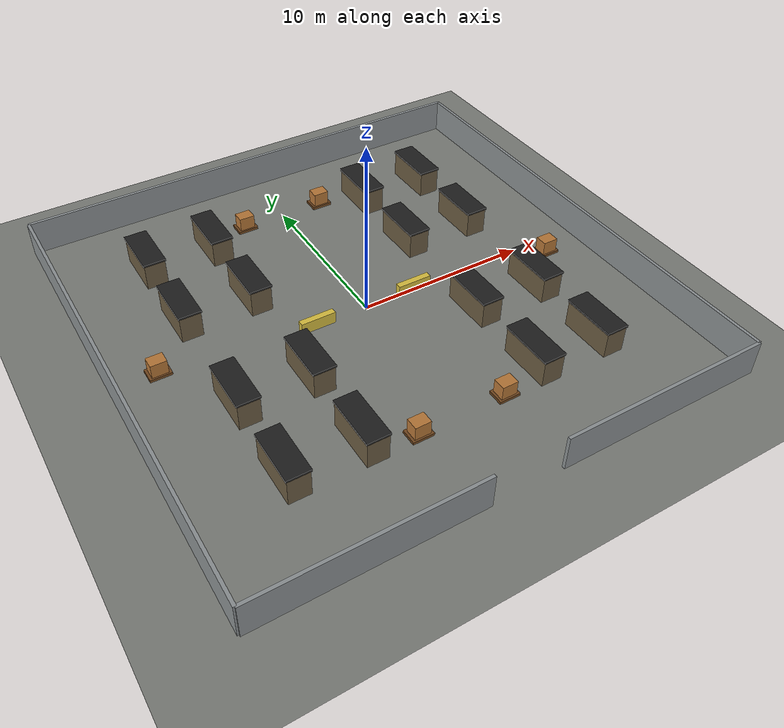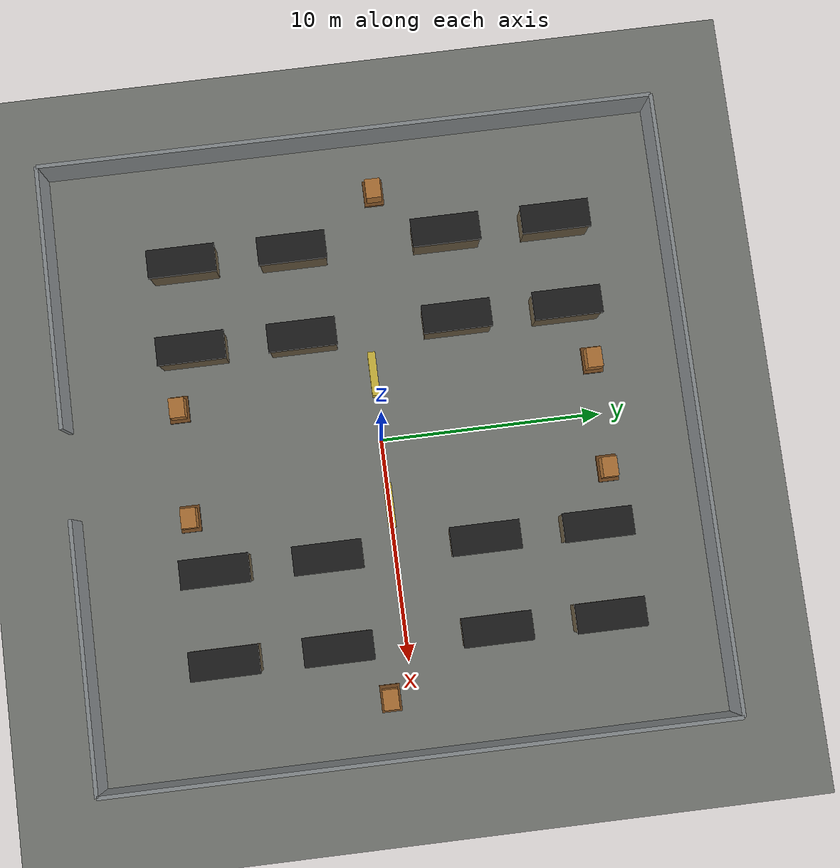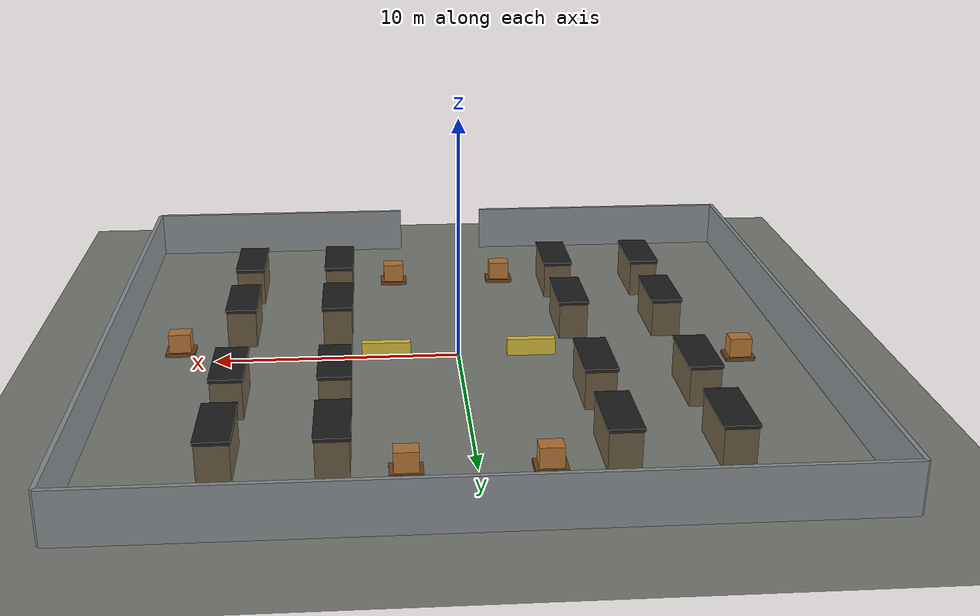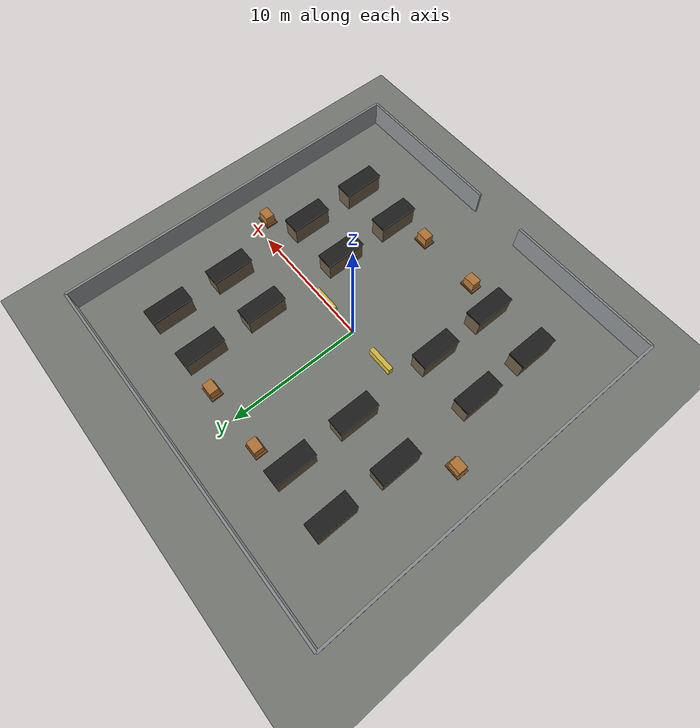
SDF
<?xml version="1.0" ?>
<sdf version="1.8">
  <world name="warehouse">
    <physics type="ode">
      <max_step_size>0.004</max_step_size>
      <real_time_factor>1.0</real_time_factor>
      <real_time_update_rate>250</real_time_update_rate>
    </physics>

    <plugin name="gz::sim::systems::Physics" filename="gz-sim-physics-system"/>
    <plugin name="gz::sim::systems::UserCommands" filename="gz-sim-user-commands-system"/>
    <plugin name="gz::sim::systems::SceneBroadcaster" filename="gz-sim-scene-broadcaster-system"/>
    <plugin name="gz::sim::systems::Contact" filename="gz-sim-contact-system"/>
    <plugin name="gz::sim::systems::Imu" filename="gz-sim-imu-system"/>
    <plugin name="gz::sim::systems::Sensors" filename="gz-sim-sensors-system">
      <render_engine>ogre2</render_engine>
    </plugin>

    <gravity>0 0 -9.8</gravity>
    <magnetic_field>6e-06 2.3e-05 -4.2e-05</magnetic_field>
    <atmosphere type="adiabatic"/>
    <scene>
      <ambient>0.55 0.55 0.55 1</ambient>
      <background>0.58 0.68 0.78 1</background>
      <shadows>true</shadows>
    </scene>

    <light name="sun" type="directional">
      <cast_shadows>true</cast_shadows>
      <pose>-5 -3 10 0 0 0</pose>
      <diffuse>0.85 0.85 0.8 1</diffuse>
      <specular>0.2 0.2 0.2 1</specular>
      <direction>0.4 0.2 -0.9</direction>
    </light>

    <model name="warehouse_floor">
      <static>true</static>
      <link name="link">
        <collision name="collision">
          <geometry><plane><normal>0 0 1</normal><size>36 36</size></plane></geometry>
        </collision>
        <visual name="visual">
          <geometry><plane><normal>0 0 1</normal><size>36 36</size></plane></geometry>
          <material>
            <ambient>0.48 0.49 0.47 1</ambient>
            <diffuse>0.48 0.49 0.47 1</diffuse>
            <specular>0.08 0.08 0.08 1</specular>
          </material>
        </visual>
      </link>
    </model>

    <model name="back_wall">
      <static>true</static>
      <pose>0 14 1.0 0 0 0</pose>
      <link name="link">
        <collision name="collision">
          <geometry><box><size>28 0.18 2.0</size></box></geometry>
        </collision>
        <visual name="visual">
          <geometry><box><size>28 0.18 2.0</size></box></geometry>
          <material>
            <ambient>0.55 0.57 0.58 1</ambient>
            <diffuse>0.55 0.57 0.58 1</diffuse>
          </material>
        </visual>
      </link>
    </model>
    <model name="left_wall">
      <static>true</static>
      <pose>-14 0 1.0 0 0 0</pose>
      <link name="link">
        <collision name="collision">
          <geometry><box><size>0.18 28 2.0</size></box></geometry>
        </collision>
        <visual name="visual">
          <geometry><box><size>0.18 28 2.0</size></box></geometry>
          <material>
            <ambient>0.55 0.57 0.58 1</ambient>
            <diffuse>0.55 0.57 0.58 1</diffuse>
          </material>
        </visual>
      </link>
    </model>
    <model name="right_wall">
      <static>true</static>
      <pose>14 0 1.0 0 0 0</pose>
      <link name="link">
        <collision name="collision">
          <geometry><box><size>0.18 28 2.0</size></box></geometry>
        </collision>
        <visual name="visual">
          <geometry><box><size>0.18 28 2.0</size></box></geometry>
          <material>
            <ambient>0.55 0.57 0.58 1</ambient>
            <diffuse>0.55 0.57 0.58 1</diffuse>
          </material>
        </visual>
      </link>
    </model>
    <model name="front_wall_left">
      <static>true</static>
      <pose>-8 -14 1.0 0 0 0</pose>
      <link name="link">
        <collision name="collision">
          <geometry><box><size>12 0.18 2.0</size></box></geometry>
        </collision>
        <visual name="visual">
          <geometry><box><size>12 0.18 2.0</size></box></geometry>
          <material>
            <ambient>0.55 0.57 0.58 1</ambient>
            <diffuse>0.55 0.57 0.58 1</diffuse>
          </material>
        </visual>
      </link>
    </model>
    <model name="front_wall_right">
      <static>true</static>
      <pose>8 -14 1.0 0 0 0</pose>
      <link name="link">
        <collision name="collision">
          <geometry><box><size>12 0.18 2.0</size></box></geometry>
        </collision>
        <visual name="visual">
          <geometry><box><size>12 0.18 2.0</size></box></geometry>
          <material>
            <ambient>0.55 0.57 0.58 1</ambient>
            <diffuse>0.55 0.57 0.58 1</diffuse>
          </material>
        </visual>
      </link>
    </model>
    <model name="shelf_0_0">
      <static>true</static>
      <pose>-9 -8 0.75 0 0 0</pose>
      <link name="link">
        <collision name="collision">
          <geometry><box><size>1.2 3.0 1.5</size></box></geometry>
        </collision>
        <visual name="visual">
          <geometry><box><size>1.2 3.0 1.5</size></box></geometry>
          <material>
            <ambient>0.42 0.36 0.26 1</ambient>
            <diffuse>0.42 0.36 0.26 1</diffuse>
          </material>
        </visual>
      </link>
    </model>
    <model name="shelf_top_0_0">
      <static>true</static>
      <pose>-9 -8 1.6 0 0 0</pose>
      <link name="link">
        <collision name="collision">
          <geometry><box><size>1.3 3.1 0.12</size></box></geometry>
        </collision>
        <visual name="visual">
          <geometry><box><size>1.3 3.1 0.12</size></box></geometry>
          <material>
            <ambient>0.12 0.12 0.12 1</ambient>
            <diffuse>0.12 0.12 0.12 1</diffuse>
          </material>
        </visual>
      </link>
    </model>
    <model name="shelf_0_1">
      <static>true</static>
      <pose>-9 -3 0.75 0 0 0</pose>
      <link name="link">
        <collision name="collision">
          <geometry><box><size>1.2 3.0 1.5</size></box></geometry>
        </collision>
        <visual name="visual">
          <geometry><box><size>1.2 3.0 1.5</size></box></geometry>
          <material>
            <ambient>0.42 0.36 0.26 1</ambient>
            <diffuse>0.42 0.36 0.26 1</diffuse>
          </material>
        </visual>
      </link>
    </model>
    <model name="shelf_top_0_1">
      <static>true</static>
      <pose>-9 -3 1.6 0 0 0</pose>
      <link name="link">
        <collision name="collision">
          <geometry><box><size>1.3 3.1 0.12</size></box></geometry>
        </collision>
        <visual name="visual">
          <geometry><box><size>1.3 3.1 0.12</size></box></geometry>
          <material>
            <ambient>0.12 0.12 0.12 1</ambient>
            <diffuse>0.12 0.12 0.12 1</diffuse>
          </material>
        </visual>
      </link>
    </model>
    <model name="shelf_0_2">
      <static>true</static>
      <pose>-9 4 0.75 0 0 0</pose>
      <link name="link">
        <collision name="collision">
          <geometry><box><size>1.2 3.0 1.5</size></box></geometry>
        </collision>
        <visual name="visual">
          <geometry><box><size>1.2 3.0 1.5</size></box></geometry>
          <material>
            <ambient>0.42 0.36 0.26 1</ambient>
            <diffuse>0.42 0.36 0.26 1</diffuse>
          </material>
        </visual>
      </link>
    </model>
    <model name="shelf_top_0_2">
      <static>true</static>
      <pose>-9 4 1.6 0 0 0</pose>
      <link name="link">
        <collision name="collision">
          <geometry><box><size>1.3 3.1 0.12</size></box></geometry>
        </collision>
        <visual name="visual">
          <geometry><box><size>1.3 3.1 0.12</size></box></geometry>
          <material>
            <ambient>0.12 0.12 0.12 1</ambient>
            <diffuse>0.12 0.12 0.12 1</diffuse>
          </material>
        </visual>
      </link>
    </model>
    <model name="shelf_0_3">
      <static>true</static>
      <pose>-9 9 0.75 0 0 0</pose>
      <link name="link">
        <collision name="collision">
          <geometry><box><size>1.2 3.0 1.5</size></box></geometry>
        </collision>
        <visual name="visual">
          <geometry><box><size>1.2 3.0 1.5</size></box></geometry>
          <material>
            <ambient>0.42 0.36 0.26 1</ambient>
            <diffuse>0.42 0.36 0.26 1</diffuse>
          </material>
        </visual>
      </link>
    </model>
    <model name="shelf_top_0_3">
      <static>true</static>
      <pose>-9 9 1.6 0 0 0</pose>
      <link name="link">
        <collision name="collision">
          <geometry><box><size>1.3 3.1 0.12</size></box></geometry>
        </collision>
        <visual name="visual">
          <geometry><box><size>1.3 3.1 0.12</size></box></geometry>
          <material>
            <ambient>0.12 0.12 0.12 1</ambient>
            <diffuse>0.12 0.12 0.12 1</diffuse>
          </material>
        </visual>
      </link>
    </model>
    <model name="shelf_1_0">
      <static>true</static>
      <pose>-5 -8 0.75 0 0 0</pose>
      <link name="link">
        <collision name="collision">
          <geometry><box><size>1.2 3.0 1.5</size></box></geometry>
        </collision>
        <visual name="visual">
          <geometry><box><size>1.2 3.0 1.5</size></box></geometry>
          <material>
            <ambient>0.42 0.36 0.26 1</ambient>
            <diffuse>0.42 0.36 0.26 1</diffuse>
          </material>
        </visual>
      </link>
    </model>
    <model name="shelf_top_1_0">
      <static>true</static>
      <pose>-5 -8 1.6 0 0 0</pose>
      <link name="link">
        <collision name="collision">
          <geometry><box><size>1.3 3.1 0.12</size></box></geometry>
        </collision>
        <visual name="visual">
          <geometry><box><size>1.3 3.1 0.12</size></box></geometry>
          <material>
            <ambient>0.12 0.12 0.12 1</ambient>
            <diffuse>0.12 0.12 0.12 1</diffuse>
          </material>
        </visual>
      </link>
    </model>
    <model name="shelf_1_1">
      <static>true</static>
      <pose>-5 -3 0.75 0 0 0</pose>
      <link name="link">
        <collision name="collision">
          <geometry><box><size>1.2 3.0 1.5</size></box></geometry>
        </collision>
        <visual name="visual">
          <geometry><box><size>1.2 3.0 1.5</size></box></geometry>
          <material>
            <ambient>0.42 0.36 0.26 1</ambient>
            <diffuse>0.42 0.36 0.26 1</diffuse>
          </material>
        </visual>
      </link>
    </model>
    <model name="shelf_top_1_1">
      <static>true</static>
      <pose>-5 -3 1.6 0 0 0</pose>
      <link name="link">
        <collision name="collision">
          <geometry><box><size>1.3 3.1 0.12</size></box></geometry>
        </collision>
        <visual name="visual">
          <geometry><box><size>1.3 3.1 0.12</size></box></geometry>
          <material>
            <ambient>0.12 0.12 0.12 1</ambient>
            <diffuse>0.12 0.12 0.12 1</diffuse>
          </material>
        </visual>
      </link>
    </model>
    <model name="shelf_1_2">
      <static>true</static>
      <pose>-5 4 0.75 0 0 0</pose>
      <link name="link">
        <collision name="collision">
          <geometry><box><size>1.2 3.0 1.5</size></box></geometry>
        </collision>
        <visual name="visual">
          <geometry><box><size>1.2 3.0 1.5</size></box></geometry>
          <material>
            <ambient>0.42 0.36 0.26 1</ambient>
            <diffuse>0.42 0.36 0.26 1</diffuse>
          </material>
        </visual>
      </link>
    </model>
    <model name="shelf_top_1_2">
      <static>true</static>
      <pose>-5 4 1.6 0 0 0</pose>
      <link name="link">
        <collision name="collision">
          <geometry><box><size>1.3 3.1 0.12</size></box></geometry>
        </collision>
        <visual name="visual">
          <geometry><box><size>1.3 3.1 0.12</size></box></geometry>
          <material>
            <ambient>0.12 0.12 0.12 1</ambient>
            <diffuse>0.12 0.12 0.12 1</diffuse>
          </material>
        </visual>
      </link>
    </model>
    <model name="shelf_1_3">
      <static>true</static>
      <pose>-5 9 0.75 0 0 0</pose>
      <link name="link">
        <collision name="collision">
          <geometry><box><size>1.2 3.0 1.5</size></box></geometry>
        </collision>
        <visual name="visual">
          <geometry><box><size>1.2 3.0 1.5</size></box></geometry>
          <material>
            <ambient>0.42 0.36 0.26 1</ambient>
            <diffuse>0.42 0.36 0.26 1</diffuse>
          </material>
        </visual>
      </link>
    </model>
    <model name="shelf_top_1_3">
      <static>true</static>
      <pose>-5 9 1.6 0 0 0</pose>
      <link name="link">
        <collision name="collision">
          <geometry><box><size>1.3 3.1 0.12</size></box></geometry>
        </collision>
        <visual name="visual">
          <geometry><box><size>1.3 3.1 0.12</size></box></geometry>
          <material>
            <ambient>0.12 0.12 0.12 1</ambient>
            <diffuse>0.12 0.12 0.12 1</diffuse>
          </material>
        </visual>
      </link>
    </model>
    <model name="shelf_2_0">
      <static>true</static>
      <pose>5 -8 0.75 0 0 0</pose>
      <link name="link">
        <collision name="collision">
          <geometry><box><size>1.2 3.0 1.5</size></box></geometry>
        </collision>
        <visual name="visual">
          <geometry><box><size>1.2 3.0 1.5</size></box></geometry>
          <material>
            <ambient>0.42 0.36 0.26 1</ambient>
            <diffuse>0.42 0.36 0.26 1</diffuse>
          </material>
        </visual>
      </link>
    </model>
    <model name="shelf_top_2_0">
      <static>true</static>
      <pose>5 -8 1.6 0 0 0</pose>
      <link name="link">
        <collision name="collision">
          <geometry><box><size>1.3 3.1 0.12</size></box></geometry>
        </collision>
        <visual name="visual">
          <geometry><box><size>1.3 3.1 0.12</size></box></geometry>
          <material>
            <ambient>0.12 0.12 0.12 1</ambient>
            <diffuse>0.12 0.12 0.12 1</diffuse>
          </material>
        </visual>
      </link>
    </model>
    <model name="shelf_2_1">
      <static>true</static>
      <pose>5 -3 0.75 0 0 0</pose>
      <link name="link">
        <collision name="collision">
          <geometry><box><size>1.2 3.0 1.5</size></box></geometry>
        </collision>
        <visual name="visual">
          <geometry><box><size>1.2 3.0 1.5</size></box></geometry>
          <material>
            <ambient>0.42 0.36 0.26 1</ambient>
            <diffuse>0.42 0.36 0.26 1</diffuse>
          </material>
        </visual>
      </link>
    </model>
    <model name="shelf_top_2_1">
      <static>true</static>
      <pose>5 -3 1.6 0 0 0</pose>
      <link name="link">
        <collision name="collision">
          <geometry><box><size>1.3 3.1 0.12</size></box></geometry>
        </collision>
        <visual name="visual">
          <geometry><box><size>1.3 3.1 0.12</size></box></geometry>
          <material>
            <ambient>0.12 0.12 0.12 1</ambient>
            <diffuse>0.12 0.12 0.12 1</diffuse>
          </material>
        </visual>
      </link>
    </model>
    <model name="shelf_2_2">
      <static>true</static>
      <pose>5 4 0.75 0 0 0</pose>
      <link name="link">
        <collision name="collision">
          <geometry><box><size>1.2 3.0 1.5</size></box></geometry>
        </collision>
        <visual name="visual">
          <geometry><box><size>1.2 3.0 1.5</size></box></geometry>
          <material>
            <ambient>0.42 0.36 0.26 1</ambient>
            <diffuse>0.42 0.36 0.26 1</diffuse>
          </material>
        </visual>
      </link>
    </model>
    <model name="shelf_top_2_2">
      <static>true</static>
      <pose>5 4 1.6 0 0 0</pose>
      <link name="link">
        <collision name="collision">
          <geometry><box><size>1.3 3.1 0.12</size></box></geometry>
        </collision>
        <visual name="visual">
          <geometry><box><size>1.3 3.1 0.12</size></box></geometry>
          <material>
            <ambient>0.12 0.12 0.12 1</ambient>
            <diffuse>0.12 0.12 0.12 1</diffuse>
          </material>
        </visual>
      </link>
    </model>
    <model name="shelf_2_3">
      <static>true</static>
      <pose>5 9 0.75 0 0 0</pose>
      <link name="link">
        <collision name="collision">
          <geometry><box><size>1.2 3.0 1.5</size></box></geometry>
        </collision>
        <visual name="visual">
          <geometry><box><size>1.2 3.0 1.5</size></box></geometry>
          <material>
            <ambient>0.42 0.36 0.26 1</ambient>
            <diffuse>0.42 0.36 0.26 1</diffuse>
          </material>
        </visual>
      </link>
    </model>
    <model name="shelf_top_2_3">
      <static>true</static>
      <pose>5 9 1.6 0 0 0</pose>
      <link name="link">
        <collision name="collision">
          <geometry><box><size>1.3 3.1 0.12</size></box></geometry>
        </collision>
        <visual name="visual">
          <geometry><box><size>1.3 3.1 0.12</size></box></geometry>
          <material>
            <ambient>0.12 0.12 0.12 1</ambient>
            <diffuse>0.12 0.12 0.12 1</diffuse>
          </material>
        </visual>
      </link>
    </model>
    <model name="shelf_3_0">
      <static>true</static>
      <pose>9 -8 0.75 0 0 0</pose>
      <link name="link">
        <collision name="collision">
          <geometry><box><size>1.2 3.0 1.5</size></box></geometry>
        </collision>
        <visual name="visual">
          <geometry><box><size>1.2 3.0 1.5</size></box></geometry>
          <material>
            <ambient>0.42 0.36 0.26 1</ambient>
            <diffuse>0.42 0.36 0.26 1</diffuse>
          </material>
        </visual>
      </link>
    </model>
    <model name="shelf_top_3_0">
      <static>true</static>
      <pose>9 -8 1.6 0 0 0</pose>
      <link name="link">
        <collision name="collision">
          <geometry><box><size>1.3 3.1 0.12</size></box></geometry>
        </collision>
        <visual name="visual">
          <geometry><box><size>1.3 3.1 0.12</size></box></geometry>
          <material>
            <ambient>0.12 0.12 0.12 1</ambient>
            <diffuse>0.12 0.12 0.12 1</diffuse>
          </material>
        </visual>
      </link>
    </model>
    <model name="shelf_3_1">
      <static>true</static>
      <pose>9 -3 0.75 0 0 0</pose>
      <link name="link">
        <collision name="collision">
          <geometry><box><size>1.2 3.0 1.5</size></box></geometry>
        </collision>
        <visual name="visual">
          <geometry><box><size>1.2 3.0 1.5</size></box></geometry>
          <material>
            <ambient>0.42 0.36 0.26 1</ambient>
            <diffuse>0.42 0.36 0.26 1</diffuse>
          </material>
        </visual>
      </link>
    </model>
    <model name="shelf_top_3_1">
      <static>true</static>
      <pose>9 -3 1.6 0 0 0</pose>
      <link name="link">
        <collision name="collision">
          <geometry><box><size>1.3 3.1 0.12</size></box></geometry>
        </collision>
        <visual name="visual">
          <geometry><box><size>1.3 3.1 0.12</size></box></geometry>
          <material>
            <ambient>0.12 0.12 0.12 1</ambient>
            <diffuse>0.12 0.12 0.12 1</diffuse>
          </material>
        </visual>
      </link>
    </model>
    <model name="shelf_3_2">
      <static>true</static>
      <pose>9 4 0.75 0 0 0</pose>
      <link name="link">
        <collision name="collision">
          <geometry><box><size>1.2 3.0 1.5</size></box></geometry>
        </collision>
        <visual name="visual">
          <geometry><box><size>1.2 3.0 1.5</size></box></geometry>
          <material>
            <ambient>0.42 0.36 0.26 1</ambient>
            <diffuse>0.42 0.36 0.26 1</diffuse>
          </material>
        </visual>
      </link>
    </model>
    <model name="shelf_top_3_2">
      <static>true</static>
      <pose>9 4 1.6 0 0 0</pose>
      <link name="link">
        <collision name="collision">
          <geometry><box><size>1.3 3.1 0.12</size></box></geometry>
        </collision>
        <visual name="visual">
          <geometry><box><size>1.3 3.1 0.12</size></box></geometry>
          <material>
            <ambient>0.12 0.12 0.12 1</ambient>
            <diffuse>0.12 0.12 0.12 1</diffuse>
          </material>
        </visual>
      </link>
    </model>
    <model name="shelf_3_3">
      <static>true</static>
      <pose>9 9 0.75 0 0 0</pose>
      <link name="link">
        <collision name="collision">
          <geometry><box><size>1.2 3.0 1.5</size></box></geometry>
        </collision>
        <visual name="visual">
          <geometry><box><size>1.2 3.0 1.5</size></box></geometry>
          <material>
            <ambient>0.42 0.36 0.26 1</ambient>
            <diffuse>0.42 0.36 0.26 1</diffuse>
          </material>
        </visual>
      </link>
    </model>
    <model name="shelf_top_3_3">
      <static>true</static>
      <pose>9 9 1.6 0 0 0</pose>
      <link name="link">
        <collision name="collision">
          <geometry><box><size>1.3 3.1 0.12</size></box></geometry>
        </collision>
        <visual name="visual">
          <geometry><box><size>1.3 3.1 0.12</size></box></geometry>
          <material>
            <ambient>0.12 0.12 0.12 1</ambient>
            <diffuse>0.12 0.12 0.12 1</diffuse>
          </material>
        </visual>
      </link>
    </model>
    <model name="pallet_0">
      <static>true</static>
      <pose>-2.5 -9 0.08 0 0 0</pose>
      <link name="link">
        <collision name="collision">
          <geometry><box><size>1.2 0.9 0.16</size></box></geometry>
        </collision>
        <visual name="visual">
          <geometry><box><size>1.2 0.9 0.16</size></box></geometry>
          <material>
            <ambient>0.45 0.28 0.12 1</ambient>
            <diffuse>0.45 0.28 0.12 1</diffuse>
          </material>
        </visual>
      </link>
    </model>
    <model name="crate_0">
      <static>true</static>
      <pose>-2.5 -9 0.55 0 0 0</pose>
      <link name="link">
        <collision name="collision">
          <geometry><box><size>0.9 0.7 0.8</size></box></geometry>
        </collision>
        <visual name="visual">
          <geometry><box><size>0.9 0.7 0.8</size></box></geometry>
          <material>
            <ambient>0.72 0.47 0.22 1</ambient>
            <diffuse>0.72 0.47 0.22 1</diffuse>
          </material>
        </visual>
      </link>
    </model>
    <model name="pallet_1">
      <static>true</static>
      <pose>2.5 -9 0.08 0 0 0</pose>
      <link name="link">
        <collision name="collision">
          <geometry><box><size>1.2 0.9 0.16</size></box></geometry>
        </collision>
        <visual name="visual">
          <geometry><box><size>1.2 0.9 0.16</size></box></geometry>
          <material>
            <ambient>0.45 0.28 0.12 1</ambient>
            <diffuse>0.45 0.28 0.12 1</diffuse>
          </material>
        </visual>
      </link>
    </model>
    <model name="crate_1">
      <static>true</static>
      <pose>2.5 -9 0.55 0 0 0</pose>
      <link name="link">
        <collision name="collision">
          <geometry><box><size>0.9 0.7 0.8</size></box></geometry>
        </collision>
        <visual name="visual">
          <geometry><box><size>0.9 0.7 0.8</size></box></geometry>
          <material>
            <ambient>0.72 0.47 0.22 1</ambient>
            <diffuse>0.72 0.47 0.22 1</diffuse>
          </material>
        </visual>
      </link>
    </model>
    <model name="pallet_2">
      <static>true</static>
      <pose>-2.5 10 0.08 0 0 0</pose>
      <link name="link">
        <collision name="collision">
          <geometry><box><size>1.2 0.9 0.16</size></box></geometry>
        </collision>
        <visual name="visual">
          <geometry><box><size>1.2 0.9 0.16</size></box></geometry>
          <material>
            <ambient>0.45 0.28 0.12 1</ambient>
            <diffuse>0.45 0.28 0.12 1</diffuse>
          </material>
        </visual>
      </link>
    </model>
    <model name="crate_2">
      <static>true</static>
      <pose>-2.5 10 0.55 0 0 0</pose>
      <link name="link">
        <collision name="collision">
          <geometry><box><size>0.9 0.7 0.8</size></box></geometry>
        </collision>
        <visual name="visual">
          <geometry><box><size>0.9 0.7 0.8</size></box></geometry>
          <material>
            <ambient>0.72 0.47 0.22 1</ambient>
            <diffuse>0.72 0.47 0.22 1</diffuse>
          </material>
        </visual>
      </link>
    </model>
    <model name="pallet_3">
      <static>true</static>
      <pose>2.5 10 0.08 0 0 0</pose>
      <link name="link">
        <collision name="collision">
          <geometry><box><size>1.2 0.9 0.16</size></box></geometry>
        </collision>
        <visual name="visual">
          <geometry><box><size>1.2 0.9 0.16</size></box></geometry>
          <material>
            <ambient>0.45 0.28 0.12 1</ambient>
            <diffuse>0.45 0.28 0.12 1</diffuse>
          </material>
        </visual>
      </link>
    </model>
    <model name="crate_3">
      <static>true</static>
      <pose>2.5 10 0.55 0 0 0</pose>
      <link name="link">
        <collision name="collision">
          <geometry><box><size>0.9 0.7 0.8</size></box></geometry>
        </collision>
        <visual name="visual">
          <geometry><box><size>0.9 0.7 0.8</size></box></geometry>
          <material>
            <ambient>0.72 0.47 0.22 1</ambient>
            <diffuse>0.72 0.47 0.22 1</diffuse>
          </material>
        </visual>
      </link>
    </model>
    <model name="pallet_4">
      <static>true</static>
      <pose>-11.5 1 0.08 0 0 0</pose>
      <link name="link">
        <collision name="collision">
          <geometry><box><size>1.2 0.9 0.16</size></box></geometry>
        </collision>
        <visual name="visual">
          <geometry><box><size>1.2 0.9 0.16</size></box></geometry>
          <material>
            <ambient>0.45 0.28 0.12 1</ambient>
            <diffuse>0.45 0.28 0.12 1</diffuse>
          </material>
        </visual>
      </link>
    </model>
    <model name="crate_4">
      <static>true</static>
      <pose>-11.5 1 0.55 0 0 0</pose>
      <link name="link">
        <collision name="collision">
          <geometry><box><size>0.9 0.7 0.8</size></box></geometry>
        </collision>
        <visual name="visual">
          <geometry><box><size>0.9 0.7 0.8</size></box></geometry>
          <material>
            <ambient>0.72 0.47 0.22 1</ambient>
            <diffuse>0.72 0.47 0.22 1</diffuse>
          </material>
        </visual>
      </link>
    </model>
    <model name="pallet_5">
      <static>true</static>
      <pose>11.5 -1 0.08 0 0 0</pose>
      <link name="link">
        <collision name="collision">
          <geometry><box><size>1.2 0.9 0.16</size></box></geometry>
        </collision>
        <visual name="visual">
          <geometry><box><size>1.2 0.9 0.16</size></box></geometry>
          <material>
            <ambient>0.45 0.28 0.12 1</ambient>
            <diffuse>0.45 0.28 0.12 1</diffuse>
          </material>
        </visual>
      </link>
    </model>
    <model name="crate_5">
      <static>true</static>
      <pose>11.5 -1 0.55 0 0 0</pose>
      <link name="link">
        <collision name="collision">
          <geometry><box><size>0.9 0.7 0.8</size></box></geometry>
        </collision>
        <visual name="visual">
          <geometry><box><size>0.9 0.7 0.8</size></box></geometry>
          <material>
            <ambient>0.72 0.47 0.22 1</ambient>
            <diffuse>0.72 0.47 0.22 1</diffuse>
          </material>
        </visual>
      </link>
    </model>
    <model name="barrier_left">
      <static>true</static>
      <pose>-3 0 0.35 0 0 1.5708</pose>
      <link name="link">
        <collision name="collision">
          <geometry><box><size>0.35 2.0 0.7</size></box></geometry>
        </collision>
        <visual name="visual">
          <geometry><box><size>0.35 2.0 0.7</size></box></geometry>
          <material>
            <ambient>0.85 0.75 0.25 1</ambient>
            <diffuse>0.85 0.75 0.25 1</diffuse>
          </material>
        </visual>
      </link>
    </model>
    <model name="barrier_right">
      <static>true</static>
      <pose>3 0 0.35 0 0 1.5708</pose>
      <link name="link">
        <collision name="collision">
          <geometry><box><size>0.35 2.0 0.7</size></box></geometry>
        </collision>
        <visual name="visual">
          <geometry><box><size>0.35 2.0 0.7</size></box></geometry>
          <material>
            <ambient>0.85 0.75 0.25 1</ambient>
            <diffuse>0.85 0.75 0.25 1</diffuse>
          </material>
        </visual>
      </link>
    </model>
  </world>
</sdf>
